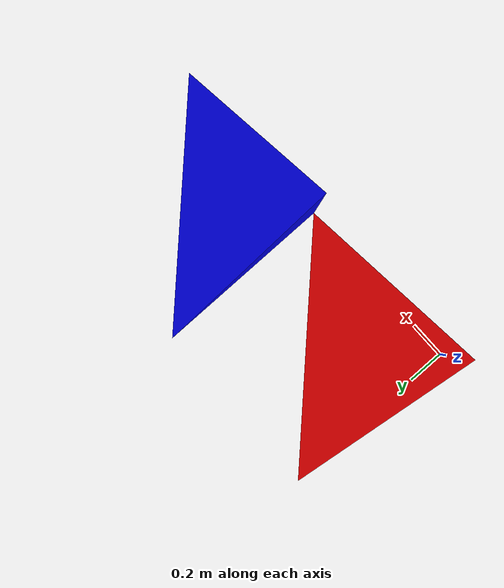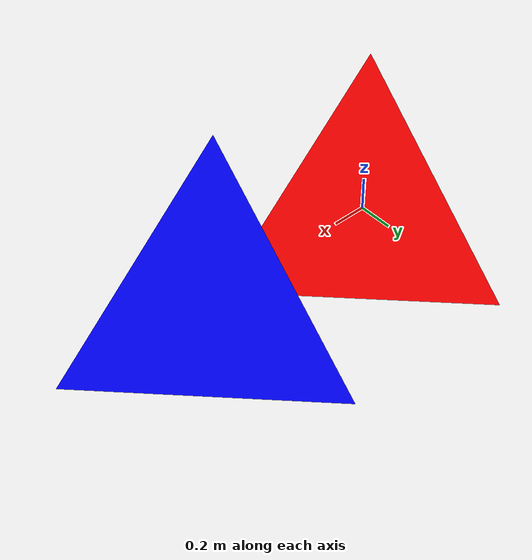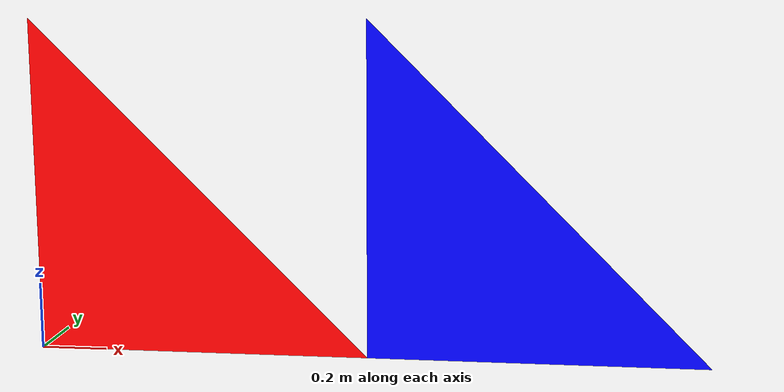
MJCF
<mujoco model="multi_color_mesh">
    <asset>
        <mesh name="tetra" vertex="0 0 0  1 0 0  0 1 0  0 0 1" face="0 1 2  0 1 3  1 2 3  0 2 3"/>
    </asset>
    <worldbody>
        <body name="base">
            <geom type="mesh" mesh="tetra" rgba="1 0 0 1" pos="0 0 0"/>
            <geom type="mesh" mesh="tetra" rgba="0 0 1 1" pos="1 0 0"/>
        </body>
    </worldbody>
</mujoco>
